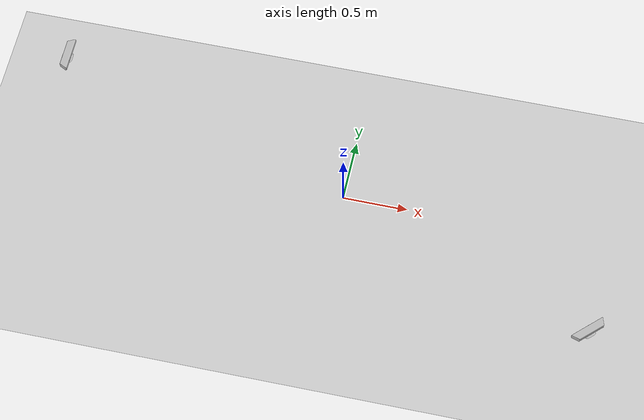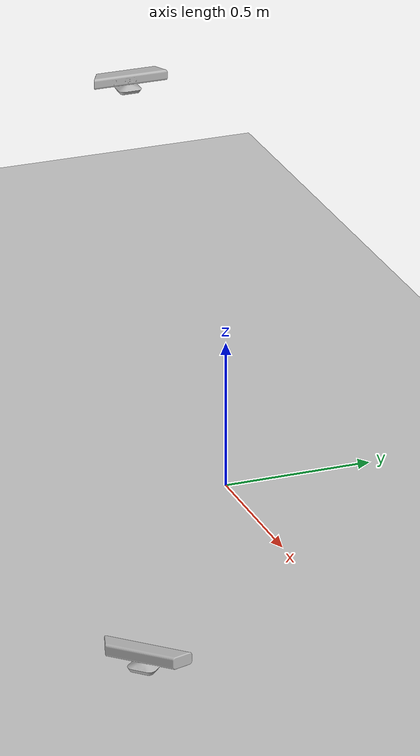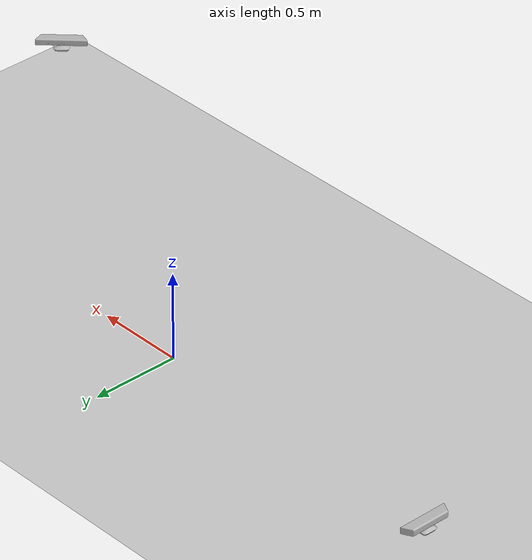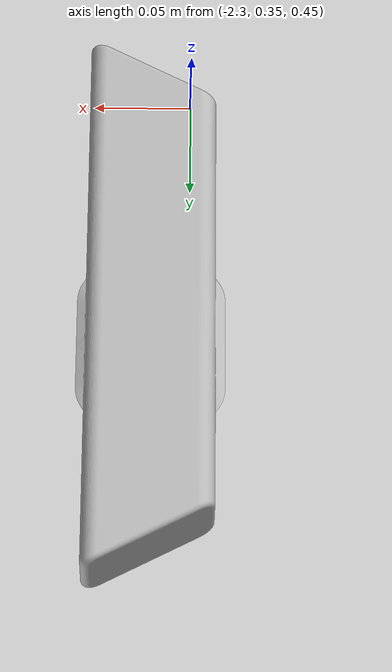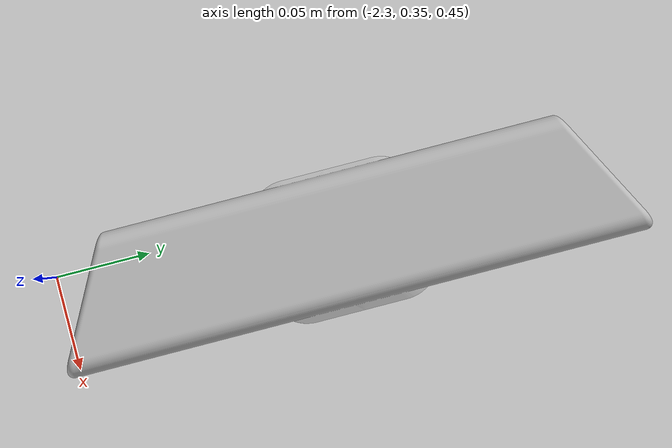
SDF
<sdf version="1.6">
 <world name="default">
  <light name="sun" type="directional">
   <pose>0 0 10 0 -0 0</pose>
   <diffuse>0.8 0.8 0.8 1</diffuse>
   <specular>0.1 0.1 0.1 1</specular>
   <attenuation>
    <range>1000</range>
    <constant>0.9</constant>
    <linear>0.01</linear>
    <quadratic>0.001</quadratic>
   </attenuation>
   <direction>-0.5 0.5 -1</direction>
  </light>
  <model name="ground_plane">
   <static>1</static>
   <link name="link">
    <collision name="collision">
     <geometry><plane><normal>0 0 1</normal><size>100 100</size></plane></geometry>
     <surface><friction><ode><mu>100</mu><mu2>50</mu2></ode></friction></surface>
    </collision>
    <visual name="visual">
     <cast_shadows>0</cast_shadows>
     <geometry><plane><normal>0 0 1</normal><size>100 100</size></plane></geometry>
     <material>
      <script><uri>file://media/materials/scripts/gazebo.material</uri><name>Gazebo/Grey</name></script>
     </material>
    </visual>
   </link>
  </model>
  <gravity>0 0 -9.8</gravity>
  <magnetic_field>6e-06 2.3e-05 -4.2e-05</magnetic_field>
  <atmosphere type="adiabatic"/>
  <physics name="default_physics" default="0" type="ode">
   <max_step_size>0.001</max_step_size>
   <real_time_factor>1</real_time_factor>
   <real_time_update_rate>1000</real_time_update_rate>
  </physics>
  <scene><ambient>0.4 0.4 0.4 1</ambient><background>0.7 0.7 0.7 1</background><shadows>1</shadows></scene>
  <spherical_coordinates>
   <surface_model>EARTH_WGS84</surface_model>
   <latitude_deg>0</latitude_deg>
   <longitude_deg>0</longitude_deg>
   <elevation>0</elevation>
   <heading_deg>0</heading_deg>
  </spherical_coordinates>
  <model name="kinect">
   <static>1</static>
   <link name="link">
    <inertial>
     <mass>0.1</mass>
     <inertia><ixx>1</ixx><ixy>0</ixy><ixz>0</ixz><iyy>1</iyy><iyz>0</iyz><izz>1</izz></inertia>
    </inertial>
    <sensor name="camera" type="depth">
     <update_rate>20</update_rate>
     <camera name="__default__">
      <horizontal_fov>1.0472</horizontal_fov>
      <image><width>640</width><height>480</height><format>R8G8B8</format></image>
      <clip><near>0.05</near><far>3</far></clip>
     </camera>
     <plugin name="camera_plugin" filename="libgazebo_ros_openni_kinect.so">
      <baseline>0.2</baseline>
      <alwaysOn>true</alwaysOn>
      <updateRate>0.0</updateRate>
      <cameraName>kinect1</cameraName>
      <imageTopicName>/kinect1/color/image_raw</imageTopicName>
      <cameraInfoTopicName>/kinect1/color/camera_info</cameraInfoTopicName>
      <depthImageTopicName>/kinect1/depth/image_raw</depthImageTopicName>
      <depthImageCameraInfoTopicName>/kinect1/depth/camera_info</depthImageCameraInfoTopicName>
      <pointCloudTopicName>/kinect1/depth/points</pointCloudTopicName>
      <frameName>kinect1</frameName>
      <pointCloudCutoff>0.3</pointCloudCutoff>
      <pointCloudCutoffMax>5.0</pointCloudCutoffMax>
      <distortionK1>0</distortionK1>
      <distortionK2>0</distortionK2>
      <distortionK3>0</distortionK3>
      <distortionT1>0</distortionT1>
      <distortionT2>0</distortionT2>
      <CxPrime>0</CxPrime>
      <Cx>0</Cx>
      <Cy>0</Cy>
      <focalLength>0</focalLength>
      <hackBaseline>0</hackBaseline>
     </plugin>
    </sensor>
    <visual name="visual">
     <geometry><mesh><uri>model://kinect/meshes/kinect.dae</uri><scale>1 1 1</scale></mesh></geometry>
     <pose>0 0 0.017 0 -0 0</pose>
     <material><shader type="vertex"><normal_map>__default__</normal_map></shader></material>
    </visual>
    <collision name="collision">
     <pose>-0.0311 0 0 0 -0 0</pose>
     <geometry><box><size>0.073 0.276 0.072</size></box></geometry>
     <surface>
      <friction>
       <ode><mu>1</mu><mu2>1</mu2><fdir1>0 0 0</fdir1><slip1>0</slip1><slip2>0</slip2></ode>
       <torsional>
        <coefficient>1</coefficient>
        <patch_radius>0</patch_radius>
        <surface_radius>0</surface_radius>
        <use_patch_radius>1</use_patch_radius>
        <ode><slip>0</slip></ode>
       </torsional>
      </friction>
      <bounce><restitution_coefficient>0</restitution_coefficient><threshold>1e+06</threshold></bounce>
      <contact>
       <collide_without_contact>0</collide_without_contact>
       <collide_without_contact_bitmask>1</collide_without_contact_bitmask>
       <collide_bitmask>1</collide_bitmask>
       <ode>
        <soft_cfm>0</soft_cfm>
        <soft_erp>0.2</soft_erp>
        <kp>1e+13</kp>
        <kd>1</kd>
        <max_vel>0.01</max_vel>
        <min_depth>0</min_depth>
       </ode>
       <bullet>
        <split_impulse>1</split_impulse>
        <split_impulse_penetration_threshold>-0.01</split_impulse_penetration_threshold>
        <soft_cfm>0</soft_cfm>
        <soft_erp>0.2</soft_erp>
        <kp>1e+13</kp>
        <kd>1</kd>
       </bullet>
      </contact>
     </surface>
    </collision>
   </link>
   <static>0</static>
   <pose>-2.25 0.5 0.5 0 -0 0</pose>
  </model>
  <model name="kinect_0">
   <static>1</static>
   <link name="kinect::link">
    <inertial>
     <mass>0.1</mass>
     <inertia><ixx>1</ixx><ixy>0</ixy><ixz>0</ixz><iyy>1</iyy><iyz>0</iyz><izz>1</izz></inertia>
    </inertial>
    <sensor name="camera" type="depth">
     <update_rate>20</update_rate>
     <camera name="__default__">
      <horizontal_fov>1.0472</horizontal_fov>
      <image><width>640</width><height>480</height><format>R8G8B8</format></image>
      <clip><near>0.05</near><far>3</far></clip>
     </camera>
     <plugin name="camera_plugin" filename="libgazebo_ros_openni_kinect.so">
      <baseline>0.2</baseline>
      <alwaysOn>true</alwaysOn>
      <updateRate>0.0</updateRate>
      <cameraName>kinect2</cameraName>
      <imageTopicName>/kinect2/color/image_raw</imageTopicName>
      <cameraInfoTopicName>/kinect2/color/camera_info</cameraInfoTopicName>
      <depthImageTopicName>/kinect2/depth/image_raw</depthImageTopicName>
      <depthImageCameraInfoTopicName>/kinect2/depth/camera_info</depthImageCameraInfoTopicName>
      <pointCloudTopicName>/kinect2/depth/points</pointCloudTopicName>
      <frameName>kinect2</frameName>
      <pointCloudCutoff>0.3</pointCloudCutoff>
      <pointCloudCutoffMax>5.0</pointCloudCutoffMax>
      <distortionK1>0</distortionK1>
      <distortionK2>0</distortionK2>
      <distortionK3>0</distortionK3>
      <distortionT1>0</distortionT1>
      <distortionT2>0</distortionT2>
      <CxPrime>0</CxPrime>
      <Cx>0</Cx>
      <Cy>0</Cy>
      <focalLength>0</focalLength>
      <hackBaseline>0</hackBaseline>
     </plugin>
    </sensor>
    <visual name="visual">
     <geometry><mesh><uri>model://kinect/meshes/kinect.dae</uri><scale>1 1 1</scale></mesh></geometry>
     <pose>0 0 0.017 0 -0 0</pose>
     <material><shader type="vertex"><normal_map>__default__</normal_map></shader></material>
    </visual>
    <collision name="collision">
     <pose>-0.0311 0 0 0 -0 0</pose>
     <geometry><box><size>0.073 0.276 0.072</size></box></geometry>
     <surface>
      <friction>
       <ode><mu>1</mu><mu2>1</mu2><fdir1>0 0 0</fdir1><slip1>0</slip1><slip2>0</slip2></ode>
       <torsional>
        <coefficient>1</coefficient>
        <patch_radius>0</patch_radius>
        <surface_radius>0</surface_radius>
        <use_patch_radius>1</use_patch_radius>
        <ode><slip>0</slip></ode>
       </torsional>
      </friction>
      <bounce><restitution_coefficient>0</restitution_coefficient><threshold>1e+06</threshold></bounce>
      <contact>
       <collide_without_contact>0</collide_without_contact>
       <collide_without_contact_bitmask>1</collide_without_contact_bitmask>
       <collide_bitmask>1</collide_bitmask>
       <ode>
        <soft_cfm>0</soft_cfm>
        <soft_erp>0.2</soft_erp>
        <kp>1e+13</kp>
        <kd>1</kd>
        <max_vel>0.01</max_vel>
        <min_depth>0</min_depth>
       </ode>
       <bullet>
        <split_impulse>1</split_impulse>
        <split_impulse_penetration_threshold>-0.01</split_impulse_penetration_threshold>
        <soft_cfm>0</soft_cfm>
        <soft_erp>0.2</soft_erp>
        <kp>1e+13</kp>
        <kd>1</kd>
       </bullet>
      </contact>
     </surface>
    </collision>
   </link>
   <static>0</static>
   <pose>2 -1 0.5 0 -0 2.35619</pose>
  </model>
 </world>
</sdf>
